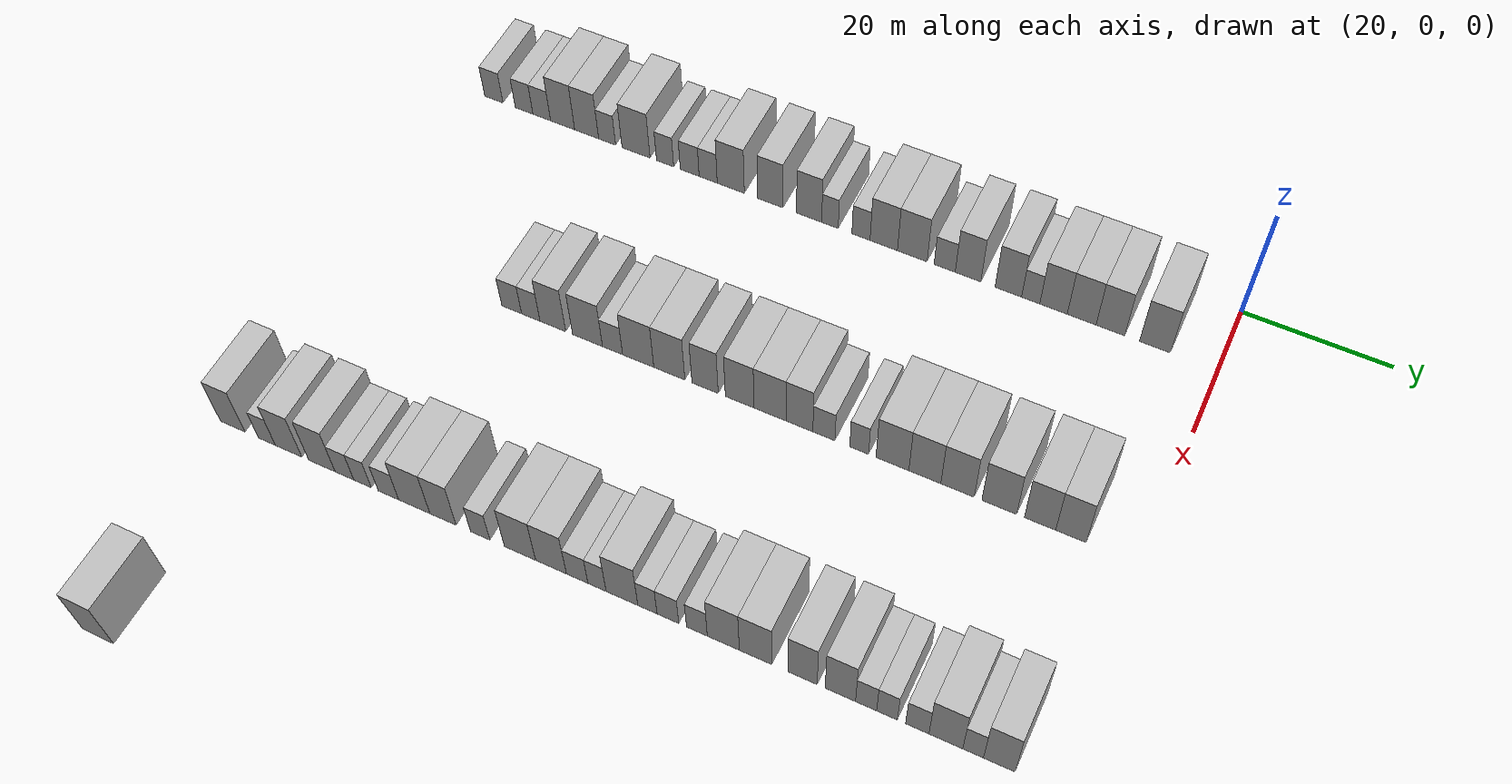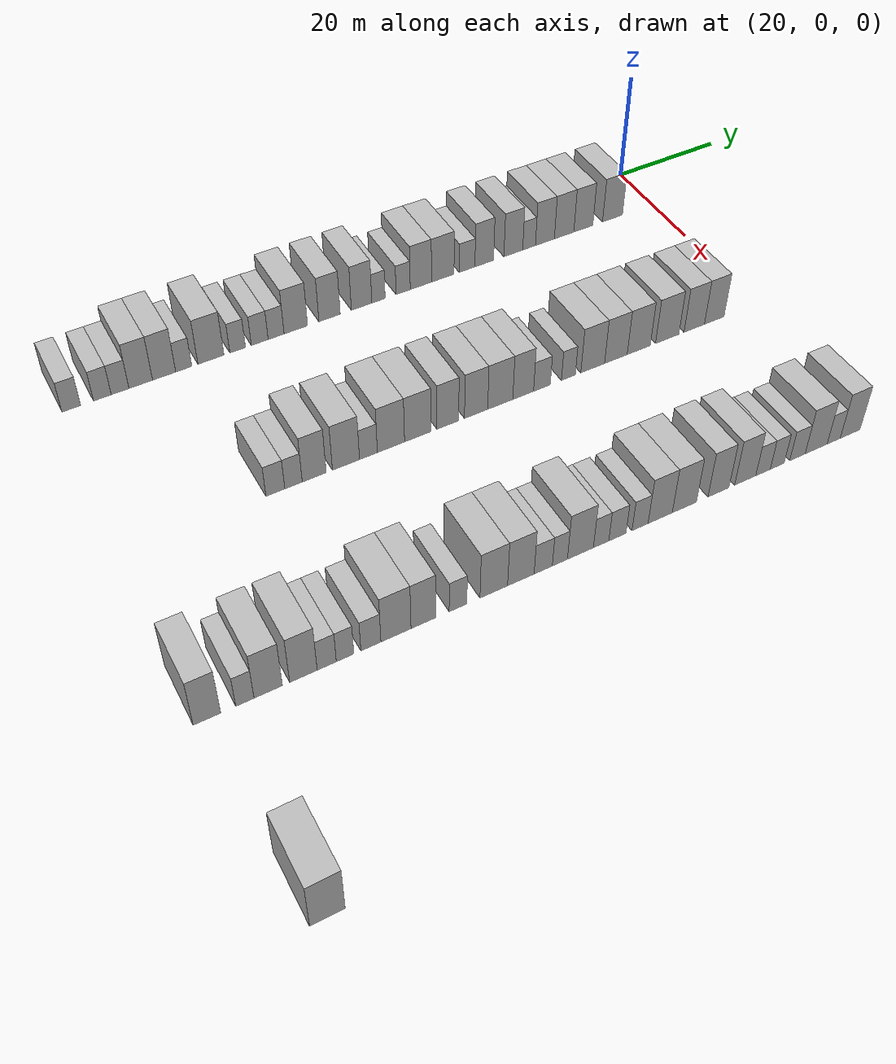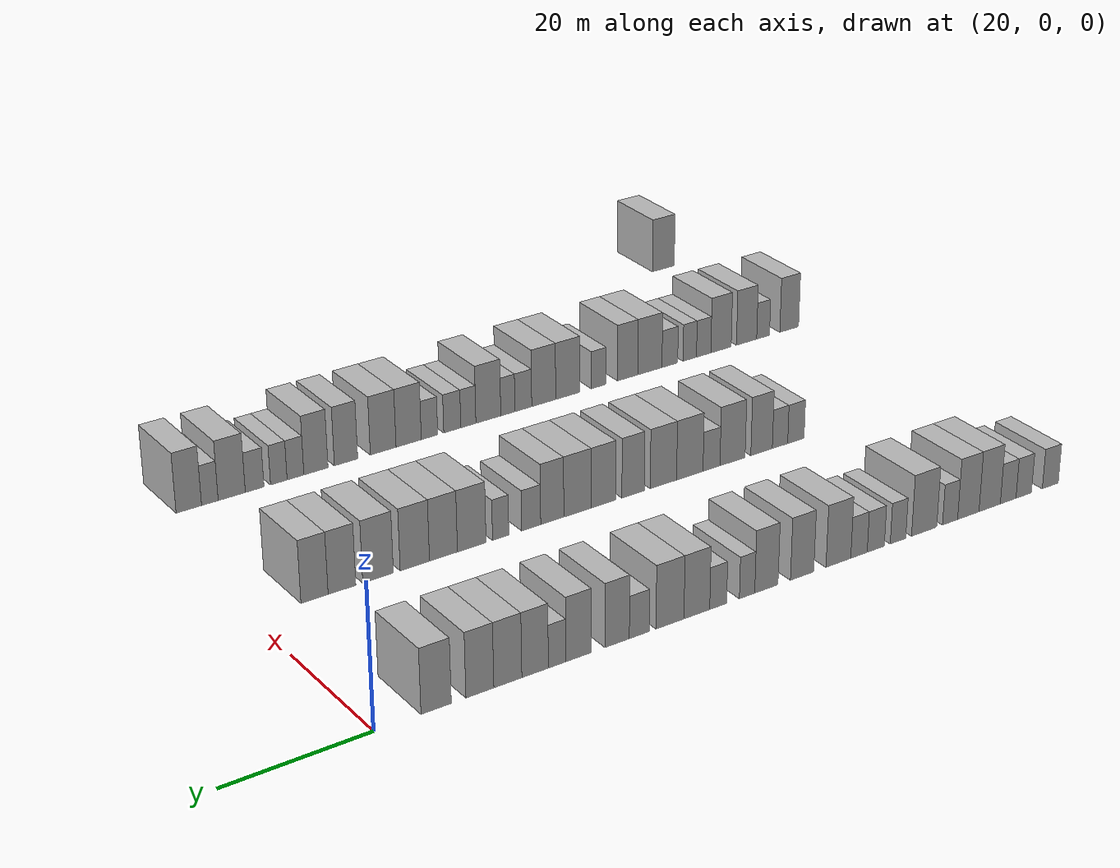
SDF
<sdf version="1.6">
 <world name="default">
  <model name="building_82">
   <static>1</static>
   <pose>25.0000 -105.5333 0 0.000000 0.000000 0.000000</pose>
   <link name="link">
    <pose>0 0 3.00 0 0 0</pose>
    <collision name="collision"><geometry><box><size>10.0000 2.9233 6.0000</size></box></geometry></collision>
    <visual name="visual">
     <cast_shadows>0</cast_shadows>
     <geometry><box><size>10.0000 2.9233 6.0000</size></box></geometry>
     <material>
      <script>
       <uri>model://HANNAS_wall/materials/scripts</uri>
       <uri>model://HANNAS_wall/materials/textures</uri>
       <name>vrc/HANNAS_wall</name>
      </script>
     </material>
    </visual>
   </link>
  </model>
  <model name="building_83">
   <static>1</static>
   <pose>25.0000 -100.6681 0 0.000000 0.000000 0.000000</pose>
   <link name="link">
    <pose>0 0 3.00 0 0 0</pose>
    <collision name="collision"><geometry><box><size>10.0000 2.8071 6.0000</size></box></geometry></collision>
    <visual name="visual">
     <cast_shadows>0</cast_shadows>
     <geometry><box><size>10.0000 2.8071 6.0000</size></box></geometry>
     <material>
      <script>
       <uri>model://HANNAS_wall/materials/scripts</uri>
       <uri>model://HANNAS_wall/materials/textures</uri>
       <name>vrc/HANNAS_wall</name>
      </script>
     </material>
    </visual>
   </link>
  </model>
  <model name="building_84">
   <static>1</static>
   <pose>25.0000 -97.8530 0 0.000000 0.000000 0.000000</pose>
   <link name="link">
    <pose>0 0 3.00 0 0 0</pose>
    <collision name="collision"><geometry><box><size>10.0000 2.8232 6.0000</size></box></geometry></collision>
    <visual name="visual">
     <cast_shadows>0</cast_shadows>
     <geometry><box><size>10.0000 2.8232 6.0000</size></box></geometry>
     <material>
      <script>
       <uri>model://HANNAS_wall/materials/scripts</uri>
       <uri>model://HANNAS_wall/materials/textures</uri>
       <name>vrc/HANNAS_wall</name>
      </script>
     </material>
    </visual>
   </link>
  </model>
  <model name="building_85">
   <static>1</static>
   <pose>25.0000 -94.5358 0 0.000000 0.000000 0.000000</pose>
   <link name="link">
    <pose>0 0 4.50 0 0 0</pose>
    <collision name="collision"><geometry><box><size>10.0000 3.8111 9.0000</size></box></geometry></collision>
    <visual name="visual">
     <cast_shadows>0</cast_shadows>
     <geometry><box><size>10.0000 3.8111 9.0000</size></box></geometry>
     <material>
      <script>
       <uri>model://HANNAS_wall/materials/scripts</uri>
       <uri>model://HANNAS_wall/materials/textures</uri>
       <name>vrc/HANNAS_wall</name>
      </script>
     </material>
    </visual>
   </link>
  </model>
  <model name="building_86">
   <static>1</static>
   <pose>25.0000 -90.7460 0 0.000000 0.000000 0.000000</pose>
   <link name="link">
    <pose>0 0 4.50 0 0 0</pose>
    <collision name="collision"><geometry><box><size>10.0000 3.7685 9.0000</size></box></geometry></collision>
    <visual name="visual">
     <cast_shadows>0</cast_shadows>
     <geometry><box><size>10.0000 3.7685 9.0000</size></box></geometry>
     <material>
      <script>
       <uri>model://HANNAS_wall/materials/scripts</uri>
       <uri>model://HANNAS_wall/materials/textures</uri>
       <name>vrc/HANNAS_wall</name>
      </script>
     </material>
    </visual>
   </link>
  </model>
  <model name="building_87">
   <static>1</static>
   <pose>25.0000 -87.5354 0 0.000000 0.000000 0.000000</pose>
   <link name="link">
    <pose>0 0 3.00 0 0 0</pose>
    <collision name="collision"><geometry><box><size>10.0000 2.6526 6.0000</size></box></geometry></collision>
    <visual name="visual">
     <cast_shadows>0</cast_shadows>
     <geometry><box><size>10.0000 2.6526 6.0000</size></box></geometry>
     <material>
      <script>
       <uri>model://HANNAS_wall/materials/scripts</uri>
       <uri>model://HANNAS_wall/materials/textures</uri>
       <name>vrc/HANNAS_wall</name>
      </script>
     </material>
    </visual>
   </link>
  </model>
  <model name="building_88">
   <static>1</static>
   <pose>25.0000 -83.0383 0 0.000000 0.000000 0.000000</pose>
   <link name="link">
    <pose>0 0 4.50 0 0 0</pose>
    <collision name="collision"><geometry><box><size>10.0000 4.3418 9.0000</size></box></geometry></collision>
    <visual name="visual">
     <cast_shadows>0</cast_shadows>
     <geometry><box><size>10.0000 4.3418 9.0000</size></box></geometry>
     <material>
      <script>
       <uri>model://HANNAS_wall/materials/scripts</uri>
       <uri>model://HANNAS_wall/materials/textures</uri>
       <name>vrc/HANNAS_wall</name>
      </script>
     </material>
    </visual>
   </link>
  </model>
  <model name="building_89">
   <static>1</static>
   <pose>25.0000 -78.5491 0 0.000000 0.000000 0.000000</pose>
   <link name="link">
    <pose>0 0 3.00 0 0 0</pose>
    <collision name="collision"><geometry><box><size>10.0000 2.6366 6.0000</size></box></geometry></collision>
    <visual name="visual">
     <cast_shadows>0</cast_shadows>
     <geometry><box><size>10.0000 2.6366 6.0000</size></box></geometry>
     <material>
      <script>
       <uri>model://HANNAS_wall/materials/scripts</uri>
       <uri>model://HANNAS_wall/materials/textures</uri>
       <name>vrc/HANNAS_wall</name>
      </script>
     </material>
    </visual>
   </link>
  </model>
  <model name="building_90">
   <static>1</static>
   <pose>25.0000 -74.7937 0 0.000000 0.000000 0.000000</pose>
   <link name="link">
    <pose>0 0 3.00 0 0 0</pose>
    <collision name="collision"><geometry><box><size>10.0000 2.8742 6.0000</size></box></geometry></collision>
    <visual name="visual">
     <cast_shadows>0</cast_shadows>
     <geometry><box><size>10.0000 2.8742 6.0000</size></box></geometry>
     <material>
      <script>
       <uri>model://HANNAS_wall/materials/scripts</uri>
       <uri>model://HANNAS_wall/materials/textures</uri>
       <name>vrc/HANNAS_wall</name>
      </script>
     </material>
    </visual>
   </link>
  </model>
  <model name="building_91">
   <static>1</static>
   <pose>25.0000 -71.9834 0 0.000000 0.000000 0.000000</pose>
   <link name="link">
    <pose>0 0 3.00 0 0 0</pose>
    <collision name="collision"><geometry><box><size>10.0000 2.7465 6.0000</size></box></geometry></collision>
    <visual name="visual">
     <cast_shadows>0</cast_shadows>
     <geometry><box><size>10.0000 2.7465 6.0000</size></box></geometry>
     <material>
      <script>
       <uri>model://HANNAS_wall/materials/scripts</uri>
       <uri>model://HANNAS_wall/materials/textures</uri>
       <name>vrc/HANNAS_wall</name>
      </script>
     </material>
    </visual>
   </link>
  </model>
  <model name="building_92">
   <static>1</static>
   <pose>25.0000 -68.5630 0 0.000000 0.000000 0.000000</pose>
   <link name="link">
    <pose>0 0 4.50 0 0 0</pose>
    <collision name="collision"><geometry><box><size>10.0000 4.0942 9.0000</size></box></geometry></collision>
    <visual name="visual">
     <cast_shadows>0</cast_shadows>
     <geometry><box><size>10.0000 4.0942 9.0000</size></box></geometry>
     <material>
      <script>
       <uri>model://HANNAS_wall/materials/scripts</uri>
       <uri>model://HANNAS_wall/materials/textures</uri>
       <name>vrc/HANNAS_wall</name>
      </script>
     </material>
    </visual>
   </link>
  </model>
  <model name="building_93">
   <static>1</static>
   <pose>25.0000 -62.6271 0 0.000000 0.000000 0.000000</pose>
   <link name="link">
    <pose>0 0 4.50 0 0 0</pose>
    <collision name="collision"><geometry><box><size>10.0000 3.7776 9.0000</size></box></geometry></collision>
    <visual name="visual">
     <cast_shadows>0</cast_shadows>
     <geometry><box><size>10.0000 3.7776 9.0000</size></box></geometry>
     <material>
      <script>
       <uri>model://HANNAS_wall/materials/scripts</uri>
       <uri>model://HANNAS_wall/materials/textures</uri>
       <name>vrc/HANNAS_wall</name>
      </script>
     </material>
    </visual>
   </link>
  </model>
  <model name="building_94">
   <static>1</static>
   <pose>25.0000 -56.8903 0 0.000000 0.000000 0.000000</pose>
   <link name="link">
    <pose>0 0 4.50 0 0 0</pose>
    <collision name="collision"><geometry><box><size>10.0000 3.6960 9.0000</size></box></geometry></collision>
    <visual name="visual">
     <cast_shadows>0</cast_shadows>
     <geometry><box><size>10.0000 3.6960 9.0000</size></box></geometry>
     <material>
      <script>
       <uri>model://HANNAS_wall/materials/scripts</uri>
       <uri>model://HANNAS_wall/materials/textures</uri>
       <name>vrc/HANNAS_wall</name>
      </script>
     </material>
    </visual>
   </link>
  </model>
  <model name="building_95">
   <static>1</static>
   <pose>25.0000 -53.8320 0 0.000000 0.000000 0.000000</pose>
   <link name="link">
    <pose>0 0 3.00 0 0 0</pose>
    <collision name="collision"><geometry><box><size>10.0000 2.4208 6.0000</size></box></geometry></collision>
    <visual name="visual">
     <cast_shadows>0</cast_shadows>
     <geometry><box><size>10.0000 2.4208 6.0000</size></box></geometry>
     <material>
      <script>
       <uri>model://HANNAS_wall/materials/scripts</uri>
       <uri>model://HANNAS_wall/materials/textures</uri>
       <name>vrc/HANNAS_wall</name>
      </script>
     </material>
    </visual>
   </link>
  </model>
  <model name="building_96">
   <static>1</static>
   <pose>25.0000 -49.3107 0 0.000000 0.000000 0.000000</pose>
   <link name="link">
    <pose>0 0 3.00 0 0 0</pose>
    <collision name="collision"><geometry><box><size>10.0000 2.6218 6.0000</size></box></geometry></collision>
    <visual name="visual">
     <cast_shadows>0</cast_shadows>
     <geometry><box><size>10.0000 2.6218 6.0000</size></box></geometry>
     <material>
      <script>
       <uri>model://HANNAS_wall/materials/scripts</uri>
       <uri>model://HANNAS_wall/materials/textures</uri>
       <name>vrc/HANNAS_wall</name>
      </script>
     </material>
    </visual>
   </link>
  </model>
  <model name="building_97">
   <static>1</static>
   <pose>25.0000 -46.0201 0 0.000000 0.000000 0.000000</pose>
   <link name="link">
    <pose>0 0 4.50 0 0 0</pose>
    <collision name="collision"><geometry><box><size>10.0000 3.9593 9.0000</size></box></geometry></collision>
    <visual name="visual">
     <cast_shadows>0</cast_shadows>
     <geometry><box><size>10.0000 3.9593 9.0000</size></box></geometry>
     <material>
      <script>
       <uri>model://HANNAS_wall/materials/scripts</uri>
       <uri>model://HANNAS_wall/materials/textures</uri>
       <name>vrc/HANNAS_wall</name>
      </script>
     </material>
    </visual>
   </link>
  </model>
  <model name="building_98">
   <static>1</static>
   <pose>25.0000 -41.9199 0 0.000000 0.000000 0.000000</pose>
   <link name="link">
    <pose>0 0 4.50 0 0 0</pose>
    <collision name="collision"><geometry><box><size>10.0000 4.2411 9.0000</size></box></geometry></collision>
    <visual name="visual">
     <cast_shadows>0</cast_shadows>
     <geometry><box><size>10.0000 4.2411 9.0000</size></box></geometry>
     <material>
      <script>
       <uri>model://HANNAS_wall/materials/scripts</uri>
       <uri>model://HANNAS_wall/materials/textures</uri>
       <name>vrc/HANNAS_wall</name>
      </script>
     </material>
    </visual>
   </link>
  </model>
  <model name="building_99">
   <static>1</static>
   <pose>25.0000 -37.3042 0 0.000000 0.000000 0.000000</pose>
   <link name="link">
    <pose>0 0 3.00 0 0 0</pose>
    <collision name="collision"><geometry><box><size>10.0000 2.9902 6.0000</size></box></geometry></collision>
    <visual name="visual">
     <cast_shadows>0</cast_shadows>
     <geometry><box><size>10.0000 2.9902 6.0000</size></box></geometry>
     <material>
      <script>
       <uri>model://HANNAS_wall/materials/scripts</uri>
       <uri>model://HANNAS_wall/materials/textures</uri>
       <name>vrc/HANNAS_wall</name>
      </script>
     </material>
    </visual>
   </link>
  </model>
  <model name="building_100">
   <static>1</static>
   <pose>25.0000 -34.0062 0 0.000000 0.000000 0.000000</pose>
   <link name="link">
    <pose>0 0 4.50 0 0 0</pose>
    <collision name="collision"><geometry><box><size>10.0000 3.6058 9.0000</size></box></geometry></collision>
    <visual name="visual">
     <cast_shadows>0</cast_shadows>
     <geometry><box><size>10.0000 3.6058 9.0000</size></box></geometry>
     <material>
      <script>
       <uri>model://HANNAS_wall/materials/scripts</uri>
       <uri>model://HANNAS_wall/materials/textures</uri>
       <name>vrc/HANNAS_wall</name>
      </script>
     </material>
    </visual>
   </link>
  </model>
  <model name="building_101">
   <static>1</static>
   <pose>25.0000 -28.3588 0 0.000000 0.000000 0.000000</pose>
   <link name="link">
    <pose>0 0 4.50 0 0 0</pose>
    <collision name="collision"><geometry><box><size>10.0000 3.6889 9.0000</size></box></geometry></collision>
    <visual name="visual">
     <cast_shadows>0</cast_shadows>
     <geometry><box><size>10.0000 3.6889 9.0000</size></box></geometry>
     <material>
      <script>
       <uri>model://HANNAS_wall/materials/scripts</uri>
       <uri>model://HANNAS_wall/materials/textures</uri>
       <name>vrc/HANNAS_wall</name>
      </script>
     </material>
    </visual>
   </link>
  </model>
  <model name="building_102">
   <static>1</static>
   <pose>25.0000 -25.2574 0 0.000000 0.000000 0.000000</pose>
   <link name="link">
    <pose>0 0 3.00 0 0 0</pose>
    <collision name="collision"><geometry><box><size>10.0000 2.5140 6.0000</size></box></geometry></collision>
    <visual name="visual">
     <cast_shadows>0</cast_shadows>
     <geometry><box><size>10.0000 2.5140 6.0000</size></box></geometry>
     <material>
      <script>
       <uri>model://HANNAS_wall/materials/scripts</uri>
       <uri>model://HANNAS_wall/materials/textures</uri>
       <name>vrc/HANNAS_wall</name>
      </script>
     </material>
    </visual>
   </link>
  </model>
  <model name="building_103">
   <static>1</static>
   <pose>25.0000 -22.1129 0 0.000000 0.000000 0.000000</pose>
   <link name="link">
    <pose>0 0 4.50 0 0 0</pose>
    <collision name="collision"><geometry><box><size>10.0000 3.7750 9.0000</size></box></geometry></collision>
    <visual name="visual">
     <cast_shadows>0</cast_shadows>
     <geometry><box><size>10.0000 3.7750 9.0000</size></box></geometry>
     <material>
      <script>
       <uri>model://HANNAS_wall/materials/scripts</uri>
       <uri>model://HANNAS_wall/materials/textures</uri>
       <name>vrc/HANNAS_wall</name>
      </script>
     </material>
    </visual>
   </link>
  </model>
  <model name="building_104">
   <static>1</static>
   <pose>25.0000 -18.2613 0 0.000000 0.000000 0.000000</pose>
   <link name="link">
    <pose>0 0 4.50 0 0 0</pose>
    <collision name="collision"><geometry><box><size>10.0000 3.9282 9.0000</size></box></geometry></collision>
    <visual name="visual">
     <cast_shadows>0</cast_shadows>
     <geometry><box><size>10.0000 3.9282 9.0000</size></box></geometry>
     <material>
      <script>
       <uri>model://HANNAS_wall/materials/scripts</uri>
       <uri>model://HANNAS_wall/materials/textures</uri>
       <name>vrc/HANNAS_wall</name>
      </script>
     </material>
    </visual>
   </link>
  </model>
  <model name="building_105">
   <static>1</static>
   <pose>25.0000 -14.3608 0 0.000000 0.000000 0.000000</pose>
   <link name="link">
    <pose>0 0 4.50 0 0 0</pose>
    <collision name="collision"><geometry><box><size>10.0000 3.8728 9.0000</size></box></geometry></collision>
    <visual name="visual">
     <cast_shadows>0</cast_shadows>
     <geometry><box><size>10.0000 3.8728 9.0000</size></box></geometry>
     <material>
      <script>
       <uri>model://HANNAS_wall/materials/scripts</uri>
       <uri>model://HANNAS_wall/materials/textures</uri>
       <name>vrc/HANNAS_wall</name>
      </script>
     </material>
    </visual>
   </link>
  </model>
  <model name="building_106">
   <static>1</static>
   <pose>25.0000 -8.3646 0 0.000000 0.000000 0.000000</pose>
   <link name="link">
    <pose>0 0 4.50 0 0 0</pose>
    <collision name="collision"><geometry><box><size>10.0000 4.1196 9.0000</size></box></geometry></collision>
    <visual name="visual">
     <cast_shadows>0</cast_shadows>
     <geometry><box><size>10.0000 4.1196 9.0000</size></box></geometry>
     <material>
      <script>
       <uri>model://HANNAS_wall/materials/scripts</uri>
       <uri>model://HANNAS_wall/materials/textures</uri>
       <name>vrc/HANNAS_wall</name>
      </script>
     </material>
    </visual>
   </link>
  </model>
  <model name="building_297">
   <static>1</static>
   <pose>55.0000 -85.2754 0 0.000000 0.000000 0.000000</pose>
   <link name="link">
    <pose>0 0 3.00 0 0 0</pose>
    <collision name="collision"><geometry><box><size>10.0000 2.9210 6.0000</size></box></geometry></collision>
    <visual name="visual">
     <cast_shadows>0</cast_shadows>
     <geometry><box><size>10.0000 2.9210 6.0000</size></box></geometry>
     <material>
      <script>
       <uri>model://HANNAS_wall/materials/scripts</uri>
       <uri>model://HANNAS_wall/materials/textures</uri>
       <name>vrc/HANNAS_wall</name>
      </script>
     </material>
    </visual>
   </link>
  </model>
  <model name="building_298">
   <static>1</static>
   <pose>55.0000 -82.4532 0 0.000000 0.000000 0.000000</pose>
   <link name="link">
    <pose>0 0 3.00 0 0 0</pose>
    <collision name="collision"><geometry><box><size>10.0000 2.7234 6.0000</size></box></geometry></collision>
    <visual name="visual">
     <cast_shadows>0</cast_shadows>
     <geometry><box><size>10.0000 2.7234 6.0000</size></box></geometry>
     <material>
      <script>
       <uri>model://HANNAS_wall/materials/scripts</uri>
       <uri>model://HANNAS_wall/materials/textures</uri>
       <name>vrc/HANNAS_wall</name>
      </script>
     </material>
    </visual>
   </link>
  </model>
  <model name="building_299">
   <static>1</static>
   <pose>55.0000 -79.2053 0 0.000000 0.000000 0.000000</pose>
   <link name="link">
    <pose>0 0 4.50 0 0 0</pose>
    <collision name="collision"><geometry><box><size>10.0000 3.7723 9.0000</size></box></geometry></collision>
    <visual name="visual">
     <cast_shadows>0</cast_shadows>
     <geometry><box><size>10.0000 3.7723 9.0000</size></box></geometry>
     <material>
      <script>
       <uri>model://HANNAS_wall/materials/scripts</uri>
       <uri>model://HANNAS_wall/materials/textures</uri>
       <name>vrc/HANNAS_wall</name>
      </script>
     </material>
    </visual>
   </link>
  </model>
  <model name="building_300">
   <static>1</static>
   <pose>55.0000 -74.1495 0 0.000000 0.000000 0.000000</pose>
   <link name="link">
    <pose>0 0 4.50 0 0 0</pose>
    <collision name="collision"><geometry><box><size>10.0000 4.3392 9.0000</size></box></geometry></collision>
    <visual name="visual">
     <cast_shadows>0</cast_shadows>
     <geometry><box><size>10.0000 4.3392 9.0000</size></box></geometry>
     <material>
      <script>
       <uri>model://HANNAS_wall/materials/scripts</uri>
       <uri>model://HANNAS_wall/materials/textures</uri>
       <name>vrc/HANNAS_wall</name>
      </script>
     </material>
    </visual>
   </link>
  </model>
  <model name="building_301">
   <static>1</static>
   <pose>55.0000 -70.5280 0 0.000000 0.000000 0.000000</pose>
   <link name="link">
    <pose>0 0 3.00 0 0 0</pose>
    <collision name="collision"><geometry><box><size>10.0000 2.9038 6.0000</size></box></geometry></collision>
    <visual name="visual">
     <cast_shadows>0</cast_shadows>
     <geometry><box><size>10.0000 2.9038 6.0000</size></box></geometry>
     <material>
      <script>
       <uri>model://HANNAS_wall/materials/scripts</uri>
       <uri>model://HANNAS_wall/materials/textures</uri>
       <name>vrc/HANNAS_wall</name>
      </script>
     </material>
    </visual>
   </link>
  </model>
  <model name="building_302">
   <static>1</static>
   <pose>55.0000 -66.8390 0 0.000000 0.000000 0.000000</pose>
   <link name="link">
    <pose>0 0 4.50 0 0 0</pose>
    <collision name="collision"><geometry><box><size>10.0000 4.4742 9.0000</size></box></geometry></collision>
    <visual name="visual">
     <cast_shadows>0</cast_shadows>
     <geometry><box><size>10.0000 4.4742 9.0000</size></box></geometry>
     <material>
      <script>
       <uri>model://HANNAS_wall/materials/scripts</uri>
       <uri>model://HANNAS_wall/materials/textures</uri>
       <name>vrc/HANNAS_wall</name>
      </script>
     </material>
    </visual>
   </link>
  </model>
  <model name="building_303">
   <static>1</static>
   <pose>55.0000 -62.4033 0 0.000000 0.000000 0.000000</pose>
   <link name="link">
    <pose>0 0 4.50 0 0 0</pose>
    <collision name="collision"><geometry><box><size>10.0000 4.3973 9.0000</size></box></geometry></collision>
    <visual name="visual">
     <cast_shadows>0</cast_shadows>
     <geometry><box><size>10.0000 4.3973 9.0000</size></box></geometry>
     <material>
      <script>
       <uri>model://HANNAS_wall/materials/scripts</uri>
       <uri>model://HANNAS_wall/materials/textures</uri>
       <name>vrc/HANNAS_wall</name>
      </script>
     </material>
    </visual>
   </link>
  </model>
  <model name="building_304">
   <static>1</static>
   <pose>55.0000 -57.3622 0 0.000000 0.000000 0.000000</pose>
   <link name="link">
    <pose>0 0 4.50 0 0 0</pose>
    <collision name="collision"><geometry><box><size>10.0000 3.6848 9.0000</size></box></geometry></collision>
    <visual name="visual">
     <cast_shadows>0</cast_shadows>
     <geometry><box><size>10.0000 3.6848 9.0000</size></box></geometry>
     <material>
      <script>
       <uri>model://HANNAS_wall/materials/scripts</uri>
       <uri>model://HANNAS_wall/materials/textures</uri>
       <name>vrc/HANNAS_wall</name>
      </script>
     </material>
    </visual>
   </link>
  </model>
  <model name="building_305">
   <static>1</static>
   <pose>55.0000 -52.5245 0 0.000000 0.000000 0.000000</pose>
   <link name="link">
    <pose>0 0 4.50 0 0 0</pose>
    <collision name="collision"><geometry><box><size>10.0000 3.9905 9.0000</size></box></geometry></collision>
    <visual name="visual">
     <cast_shadows>0</cast_shadows>
     <geometry><box><size>10.0000 3.9905 9.0000</size></box></geometry>
     <material>
      <script>
       <uri>model://HANNAS_wall/materials/scripts</uri>
       <uri>model://HANNAS_wall/materials/textures</uri>
       <name>vrc/HANNAS_wall</name>
      </script>
     </material>
    </visual>
   </link>
  </model>
  <model name="building_306">
   <static>1</static>
   <pose>55.0000 -48.3362 0 0.000000 0.000000 0.000000</pose>
   <link name="link">
    <pose>0 0 4.50 0 0 0</pose>
    <collision name="collision"><geometry><box><size>10.0000 4.3862 9.0000</size></box></geometry></collision>
    <visual name="visual">
     <cast_shadows>0</cast_shadows>
     <geometry><box><size>10.0000 4.3862 9.0000</size></box></geometry>
     <material>
      <script>
       <uri>model://HANNAS_wall/materials/scripts</uri>
       <uri>model://HANNAS_wall/materials/textures</uri>
       <name>vrc/HANNAS_wall</name>
      </script>
     </material>
    </visual>
   </link>
  </model>
  <model name="building_307">
   <static>1</static>
   <pose>55.0000 -44.3082 0 0.000000 0.000000 0.000000</pose>
   <link name="link">
    <pose>0 0 4.50 0 0 0</pose>
    <collision name="collision"><geometry><box><size>10.0000 3.6697 9.0000</size></box></geometry></collision>
    <visual name="visual">
     <cast_shadows>0</cast_shadows>
     <geometry><box><size>10.0000 3.6697 9.0000</size></box></geometry>
     <material>
      <script>
       <uri>model://HANNAS_wall/materials/scripts</uri>
       <uri>model://HANNAS_wall/materials/textures</uri>
       <name>vrc/HANNAS_wall</name>
      </script>
     </material>
    </visual>
   </link>
  </model>
  <model name="building_308">
   <static>1</static>
   <pose>55.0000 -40.9795 0 0.000000 0.000000 0.000000</pose>
   <link name="link">
    <pose>0 0 3.00 0 0 0</pose>
    <collision name="collision"><geometry><box><size>10.0000 2.9876 6.0000</size></box></geometry></collision>
    <visual name="visual">
     <cast_shadows>0</cast_shadows>
     <geometry><box><size>10.0000 2.9876 6.0000</size></box></geometry>
     <material>
      <script>
       <uri>model://HANNAS_wall/materials/scripts</uri>
       <uri>model://HANNAS_wall/materials/textures</uri>
       <name>vrc/HANNAS_wall</name>
      </script>
     </material>
    </visual>
   </link>
  </model>
  <model name="building_309">
   <static>1</static>
   <pose>55.0000 -36.2244 0 0.000000 0.000000 0.000000</pose>
   <link name="link">
    <pose>0 0 3.00 0 0 0</pose>
    <collision name="collision"><geometry><box><size>10.0000 2.5228 6.0000</size></box></geometry></collision>
    <visual name="visual">
     <cast_shadows>0</cast_shadows>
     <geometry><box><size>10.0000 2.5228 6.0000</size></box></geometry>
     <material>
      <script>
       <uri>model://HANNAS_wall/materials/scripts</uri>
       <uri>model://HANNAS_wall/materials/textures</uri>
       <name>vrc/HANNAS_wall</name>
      </script>
     </material>
    </visual>
   </link>
  </model>
  <model name="building_310">
   <static>1</static>
   <pose>55.0000 -31.7839 0 0.000000 0.000000 0.000000</pose>
   <link name="link">
    <pose>0 0 4.50 0 0 0</pose>
    <collision name="collision"><geometry><box><size>10.0000 4.3581 9.0000</size></box></geometry></collision>
    <visual name="visual">
     <cast_shadows>0</cast_shadows>
     <geometry><box><size>10.0000 4.3581 9.0000</size></box></geometry>
     <material>
      <script>
       <uri>model://HANNAS_wall/materials/scripts</uri>
       <uri>model://HANNAS_wall/materials/textures</uri>
       <name>vrc/HANNAS_wall</name>
      </script>
     </material>
    </visual>
   </link>
  </model>
  <model name="building_311">
   <static>1</static>
   <pose>55.0000 -27.4965 0 0.000000 0.000000 0.000000</pose>
   <link name="link">
    <pose>0 0 4.50 0 0 0</pose>
    <collision name="collision"><geometry><box><size>10.0000 4.2167 9.0000</size></box></geometry></collision>
    <visual name="visual">
     <cast_shadows>0</cast_shadows>
     <geometry><box><size>10.0000 4.2167 9.0000</size></box></geometry>
     <material>
      <script>
       <uri>model://HANNAS_wall/materials/scripts</uri>
       <uri>model://HANNAS_wall/materials/textures</uri>
       <name>vrc/HANNAS_wall</name>
      </script>
     </material>
    </visual>
   </link>
  </model>
  <model name="building_312">
   <static>1</static>
   <pose>55.0000 -23.2099 0 0.000000 0.000000 0.000000</pose>
   <link name="link">
    <pose>0 0 4.50 0 0 0</pose>
    <collision name="collision"><geometry><box><size>10.0000 4.3565 9.0000</size></box></geometry></collision>
    <visual name="visual">
     <cast_shadows>0</cast_shadows>
     <geometry><box><size>10.0000 4.3565 9.0000</size></box></geometry>
     <material>
      <script>
       <uri>model://HANNAS_wall/materials/scripts</uri>
       <uri>model://HANNAS_wall/materials/textures</uri>
       <name>vrc/HANNAS_wall</name>
      </script>
     </material>
    </visual>
   </link>
  </model>
  <model name="building_313">
   <static>1</static>
   <pose>55.0000 -17.7929 0 0.000000 0.000000 0.000000</pose>
   <link name="link">
    <pose>0 0 4.50 0 0 0</pose>
    <collision name="collision"><geometry><box><size>10.0000 4.4776 9.0000</size></box></geometry></collision>
    <visual name="visual">
     <cast_shadows>0</cast_shadows>
     <geometry><box><size>10.0000 4.4776 9.0000</size></box></geometry>
     <material>
      <script>
       <uri>model://HANNAS_wall/materials/scripts</uri>
       <uri>model://HANNAS_wall/materials/textures</uri>
       <name>vrc/HANNAS_wall</name>
      </script>
     </material>
    </visual>
   </link>
  </model>
  <model name="building_314">
   <static>1</static>
   <pose>55.0000 -12.5634 0 0.000000 0.000000 0.000000</pose>
   <link name="link">
    <pose>0 0 4.50 0 0 0</pose>
    <collision name="collision"><geometry><box><size>10.0000 3.9813 9.0000</size></box></geometry></collision>
    <visual name="visual">
     <cast_shadows>0</cast_shadows>
     <geometry><box><size>10.0000 3.9813 9.0000</size></box></geometry>
     <material>
      <script>
       <uri>model://HANNAS_wall/materials/scripts</uri>
       <uri>model://HANNAS_wall/materials/textures</uri>
       <name>vrc/HANNAS_wall</name>
      </script>
     </material>
    </visual>
   </link>
  </model>
  <model name="building_315">
   <static>1</static>
   <pose>55.0000 -8.6425 0 0.000000 0.000000 0.000000</pose>
   <link name="link">
    <pose>0 0 4.50 0 0 0</pose>
    <collision name="collision"><geometry><box><size>10.0000 3.8606 9.0000</size></box></geometry></collision>
    <visual name="visual">
     <cast_shadows>0</cast_shadows>
     <geometry><box><size>10.0000 3.8606 9.0000</size></box></geometry>
     <material>
      <script>
       <uri>model://HANNAS_wall/materials/scripts</uri>
       <uri>model://HANNAS_wall/materials/textures</uri>
       <name>vrc/HANNAS_wall</name>
      </script>
     </material>
    </visual>
   </link>
  </model>
  <model name="building_516">
   <static>1</static>
   <pose>85.0000 -107.6336 0 0.000000 0.000000 0.000000</pose>
   <link name="link">
    <pose>0 0 4.50 0 0 0</pose>
    <collision name="collision"><geometry><box><size>10.0000 3.6516 9.0000</size></box></geometry></collision>
    <visual name="visual">
     <cast_shadows>0</cast_shadows>
     <geometry><box><size>10.0000 3.6516 9.0000</size></box></geometry>
     <material>
      <script>
       <uri>model://HANNAS_wall/materials/scripts</uri>
       <uri>model://HANNAS_wall/materials/textures</uri>
       <name>vrc/HANNAS_wall</name>
      </script>
     </material>
    </visual>
   </link>
  </model>
  <model name="building_517">
   <static>1</static>
   <pose>85.0000 -102.5727 0 0.000000 0.000000 0.000000</pose>
   <link name="link">
    <pose>0 0 3.00 0 0 0</pose>
    <collision name="collision"><geometry><box><size>10.0000 2.4701 6.0000</size></box></geometry></collision>
    <visual name="visual">
     <cast_shadows>0</cast_shadows>
     <geometry><box><size>10.0000 2.4701 6.0000</size></box></geometry>
     <material>
      <script>
       <uri>model://HANNAS_wall/materials/scripts</uri>
       <uri>model://HANNAS_wall/materials/textures</uri>
       <name>vrc/HANNAS_wall</name>
      </script>
     </material>
    </visual>
   </link>
  </model>
  <model name="building_518">
   <static>1</static>
   <pose>85.0000 -99.4072 0 0.000000 0.000000 0.000000</pose>
   <link name="link">
    <pose>0 0 4.50 0 0 0</pose>
    <collision name="collision"><geometry><box><size>10.0000 3.8610 9.0000</size></box></geometry></collision>
    <visual name="visual">
     <cast_shadows>0</cast_shadows>
     <geometry><box><size>10.0000 3.8610 9.0000</size></box></geometry>
     <material>
      <script>
       <uri>model://HANNAS_wall/materials/scripts</uri>
       <uri>model://HANNAS_wall/materials/textures</uri>
       <name>vrc/HANNAS_wall</name>
      </script>
     </material>
    </visual>
   </link>
  </model>
  <model name="building_519">
   <static>1</static>
   <pose>85.0000 -94.5643 0 0.000000 0.000000 0.000000</pose>
   <link name="link">
    <pose>0 0 4.50 0 0 0</pose>
    <collision name="collision"><geometry><box><size>10.0000 3.8247 9.0000</size></box></geometry></collision>
    <visual name="visual">
     <cast_shadows>0</cast_shadows>
     <geometry><box><size>10.0000 3.8247 9.0000</size></box></geometry>
     <material>
      <script>
       <uri>model://HANNAS_wall/materials/scripts</uri>
       <uri>model://HANNAS_wall/materials/textures</uri>
       <name>vrc/HANNAS_wall</name>
      </script>
     </material>
    </visual>
   </link>
  </model>
  <model name="building_520">
   <static>1</static>
   <pose>85.0000 -91.3111 0 0.000000 0.000000 0.000000</pose>
   <link name="link">
    <pose>0 0 3.00 0 0 0</pose>
    <collision name="collision"><geometry><box><size>10.0000 2.6817 6.0000</size></box></geometry></collision>
    <visual name="visual">
     <cast_shadows>0</cast_shadows>
     <geometry><box><size>10.0000 2.6817 6.0000</size></box></geometry>
     <material>
      <script>
       <uri>model://HANNAS_wall/materials/scripts</uri>
       <uri>model://HANNAS_wall/materials/textures</uri>
       <name>vrc/HANNAS_wall</name>
      </script>
     </material>
    </visual>
   </link>
  </model>
  <model name="building_521">
   <static>1</static>
   <pose>85.0000 -88.7271 0 0.000000 0.000000 0.000000</pose>
   <link name="link">
    <pose>0 0 3.00 0 0 0</pose>
    <collision name="collision"><geometry><box><size>10.0000 2.4863 6.0000</size></box></geometry></collision>
    <visual name="visual">
     <cast_shadows>0</cast_shadows>
     <geometry><box><size>10.0000 2.4863 6.0000</size></box></geometry>
     <material>
      <script>
       <uri>model://HANNAS_wall/materials/scripts</uri>
       <uri>model://HANNAS_wall/materials/textures</uri>
       <name>vrc/HANNAS_wall</name>
      </script>
     </material>
    </visual>
   </link>
  </model>
  <model name="building_522">
   <static>1</static>
   <pose>85.0000 -85.0419 0 0.000000 0.000000 0.000000</pose>
   <link name="link">
    <pose>0 0 3.00 0 0 0</pose>
    <collision name="collision"><geometry><box><size>10.0000 2.8840 6.0000</size></box></geometry></collision>
    <visual name="visual">
     <cast_shadows>0</cast_shadows>
     <geometry><box><size>10.0000 2.8840 6.0000</size></box></geometry>
     <material>
      <script>
       <uri>model://HANNAS_wall/materials/scripts</uri>
       <uri>model://HANNAS_wall/materials/textures</uri>
       <name>vrc/HANNAS_wall</name>
      </script>
     </material>
    </visual>
   </link>
  </model>
  <model name="building_523">
   <static>1</static>
   <pose>85.0000 -81.4042 0 0.000000 0.000000 0.000000</pose>
   <link name="link">
    <pose>0 0 4.50 0 0 0</pose>
    <collision name="collision"><geometry><box><size>10.0000 4.3914 9.0000</size></box></geometry></collision>
    <visual name="visual">
     <cast_shadows>0</cast_shadows>
     <geometry><box><size>10.0000 4.3914 9.0000</size></box></geometry>
     <material>
      <script>
       <uri>model://HANNAS_wall/materials/scripts</uri>
       <uri>model://HANNAS_wall/materials/textures</uri>
       <name>vrc/HANNAS_wall</name>
      </script>
     </material>
    </visual>
   </link>
  </model>
  <model name="building_524">
   <static>1</static>
   <pose>85.0000 -77.3762 0 0.000000 0.000000 0.000000</pose>
   <link name="link">
    <pose>0 0 4.50 0 0 0</pose>
    <collision name="collision"><geometry><box><size>10.0000 3.6644 9.0000</size></box></geometry></collision>
    <visual name="visual">
     <cast_shadows>0</cast_shadows>
     <geometry><box><size>10.0000 3.6644 9.0000</size></box></geometry>
     <material>
      <script>
       <uri>model://HANNAS_wall/materials/scripts</uri>
       <uri>model://HANNAS_wall/materials/textures</uri>
       <name>vrc/HANNAS_wall</name>
      </script>
     </material>
    </visual>
   </link>
  </model>
  <model name="building_525">
   <static>1</static>
   <pose>85.0000 -72.2135 0 0.000000 0.000000 0.000000</pose>
   <link name="link">
    <pose>0 0 3.00 0 0 0</pose>
    <collision name="collision"><geometry><box><size>10.0000 2.6611 6.0000</size></box></geometry></collision>
    <visual name="visual">
     <cast_shadows>0</cast_shadows>
     <geometry><box><size>10.0000 2.6611 6.0000</size></box></geometry>
     <material>
      <script>
       <uri>model://HANNAS_wall/materials/scripts</uri>
       <uri>model://HANNAS_wall/materials/textures</uri>
       <name>vrc/HANNAS_wall</name>
      </script>
     </material>
    </visual>
   </link>
  </model>
  <model name="building_526">
   <static>1</static>
   <pose>85.0000 -66.7624 0 0.000000 0.000000 0.000000</pose>
   <link name="link">
    <pose>0 0 4.50 0 0 0</pose>
    <collision name="collision"><geometry><box><size>10.0000 4.2412 9.0000</size></box></geometry></collision>
    <visual name="visual">
     <cast_shadows>0</cast_shadows>
     <geometry><box><size>10.0000 4.2412 9.0000</size></box></geometry>
     <material>
      <script>
       <uri>model://HANNAS_wall/materials/scripts</uri>
       <uri>model://HANNAS_wall/materials/textures</uri>
       <name>vrc/HANNAS_wall</name>
      </script>
     </material>
    </visual>
   </link>
  </model>
  <model name="building_527">
   <static>1</static>
   <pose>85.0000 -62.5671 0 0.000000 0.000000 0.000000</pose>
   <link name="link">
    <pose>0 0 4.50 0 0 0</pose>
    <collision name="collision"><geometry><box><size>10.0000 4.1493 9.0000</size></box></geometry></collision>
    <visual name="visual">
     <cast_shadows>0</cast_shadows>
     <geometry><box><size>10.0000 4.1493 9.0000</size></box></geometry>
     <material>
      <script>
       <uri>model://HANNAS_wall/materials/scripts</uri>
       <uri>model://HANNAS_wall/materials/textures</uri>
       <name>vrc/HANNAS_wall</name>
      </script>
     </material>
    </visual>
   </link>
  </model>
  <model name="building_528">
   <static>1</static>
   <pose>85.0000 -59.0534 0 0.000000 0.000000 0.000000</pose>
   <link name="link">
    <pose>0 0 3.00 0 0 0</pose>
    <collision name="collision"><geometry><box><size>10.0000 2.8781 6.0000</size></box></geometry></collision>
    <visual name="visual">
     <cast_shadows>0</cast_shadows>
     <geometry><box><size>10.0000 2.8781 6.0000</size></box></geometry>
     <material>
      <script>
       <uri>model://HANNAS_wall/materials/scripts</uri>
       <uri>model://HANNAS_wall/materials/textures</uri>
       <name>vrc/HANNAS_wall</name>
      </script>
     </material>
    </visual>
   </link>
  </model>
  <model name="building_529">
   <static>1</static>
   <pose>85.0000 -56.4107 0 0.000000 0.000000 0.000000</pose>
   <link name="link">
    <pose>0 0 3.00 0 0 0</pose>
    <collision name="collision"><geometry><box><size>10.0000 2.4072 6.0000</size></box></geometry></collision>
    <visual name="visual">
     <cast_shadows>0</cast_shadows>
     <geometry><box><size>10.0000 2.4072 6.0000</size></box></geometry>
     <material>
      <script>
       <uri>model://HANNAS_wall/materials/scripts</uri>
       <uri>model://HANNAS_wall/materials/textures</uri>
       <name>vrc/HANNAS_wall</name>
      </script>
     </material>
    </visual>
   </link>
  </model>
  <model name="building_530">
   <static>1</static>
   <pose>85.0000 -53.1112 0 0.000000 0.000000 0.000000</pose>
   <link name="link">
    <pose>0 0 4.50 0 0 0</pose>
    <collision name="collision"><geometry><box><size>10.0000 4.1919 9.0000</size></box></geometry></collision>
    <visual name="visual">
     <cast_shadows>0</cast_shadows>
     <geometry><box><size>10.0000 4.1919 9.0000</size></box></geometry>
     <material>
      <script>
       <uri>model://HANNAS_wall/materials/scripts</uri>
       <uri>model://HANNAS_wall/materials/textures</uri>
       <name>vrc/HANNAS_wall</name>
      </script>
     </material>
    </visual>
   </link>
  </model>
  <model name="building_531">
   <static>1</static>
   <pose>85.0000 -49.7569 0 0.000000 0.000000 0.000000</pose>
   <link name="link">
    <pose>0 0 3.00 0 0 0</pose>
    <collision name="collision"><geometry><box><size>10.0000 2.5169 6.0000</size></box></geometry></collision>
    <visual name="visual">
     <cast_shadows>0</cast_shadows>
     <geometry><box><size>10.0000 2.5169 6.0000</size></box></geometry>
     <material>
      <script>
       <uri>model://HANNAS_wall/materials/scripts</uri>
       <uri>model://HANNAS_wall/materials/textures</uri>
       <name>vrc/HANNAS_wall</name>
      </script>
     </material>
    </visual>
   </link>
  </model>
  <model name="building_532">
   <static>1</static>
   <pose>85.0000 -47.0857 0 0.000000 0.000000 0.000000</pose>
   <link name="link">
    <pose>0 0 3.00 0 0 0</pose>
    <collision name="collision"><geometry><box><size>10.0000 2.8255 6.0000</size></box></geometry></collision>
    <visual name="visual">
     <cast_shadows>0</cast_shadows>
     <geometry><box><size>10.0000 2.8255 6.0000</size></box></geometry>
     <material>
      <script>
       <uri>model://HANNAS_wall/materials/scripts</uri>
       <uri>model://HANNAS_wall/materials/textures</uri>
       <name>vrc/HANNAS_wall</name>
      </script>
     </material>
    </visual>
   </link>
  </model>
  <model name="building_533">
   <static>1</static>
   <pose>85.0000 -43.3320 0 0.000000 0.000000 0.000000</pose>
   <link name="link">
    <pose>0 0 3.00 0 0 0</pose>
    <collision name="collision"><geometry><box><size>10.0000 2.6820 6.0000</size></box></geometry></collision>
    <visual name="visual">
     <cast_shadows>0</cast_shadows>
     <geometry><box><size>10.0000 2.6820 6.0000</size></box></geometry>
     <material>
      <script>
       <uri>model://HANNAS_wall/materials/scripts</uri>
       <uri>model://HANNAS_wall/materials/textures</uri>
       <name>vrc/HANNAS_wall</name>
      </script>
     </material>
    </visual>
   </link>
  </model>
  <model name="building_534">
   <static>1</static>
   <pose>85.0000 -39.9399 0 0.000000 0.000000 0.000000</pose>
   <link name="link">
    <pose>0 0 4.50 0 0 0</pose>
    <collision name="collision"><geometry><box><size>10.0000 4.1020 9.0000</size></box></geometry></collision>
    <visual name="visual">
     <cast_shadows>0</cast_shadows>
     <geometry><box><size>10.0000 4.1020 9.0000</size></box></geometry>
     <material>
      <script>
       <uri>model://HANNAS_wall/materials/scripts</uri>
       <uri>model://HANNAS_wall/materials/textures</uri>
       <name>vrc/HANNAS_wall</name>
      </script>
     </material>
    </visual>
   </link>
  </model>
  <model name="building_535">
   <static>1</static>
   <pose>85.0000 -35.8208 0 0.000000 0.000000 0.000000</pose>
   <link name="link">
    <pose>0 0 4.50 0 0 0</pose>
    <collision name="collision"><geometry><box><size>10.0000 4.1363 9.0000</size></box></geometry></collision>
    <visual name="visual">
     <cast_shadows>0</cast_shadows>
     <geometry><box><size>10.0000 4.1363 9.0000</size></box></geometry>
     <material>
      <script>
       <uri>model://HANNAS_wall/materials/scripts</uri>
       <uri>model://HANNAS_wall/materials/textures</uri>
       <name>vrc/HANNAS_wall</name>
      </script>
     </material>
    </visual>
   </link>
  </model>
  <model name="building_536">
   <static>1</static>
   <pose>85.0000 -29.9128 0 0.000000 0.000000 0.000000</pose>
   <link name="link">
    <pose>0 0 4.50 0 0 0</pose>
    <collision name="collision"><geometry><box><size>10.0000 3.6798 9.0000</size></box></geometry></collision>
    <visual name="visual">
     <cast_shadows>0</cast_shadows>
     <geometry><box><size>10.0000 3.6798 9.0000</size></box></geometry>
     <material>
      <script>
       <uri>model://HANNAS_wall/materials/scripts</uri>
       <uri>model://HANNAS_wall/materials/textures</uri>
       <name>vrc/HANNAS_wall</name>
      </script>
     </material>
    </visual>
   </link>
  </model>
  <model name="building_537">
   <static>1</static>
   <pose>85.0000 -25.1958 0 0.000000 0.000000 0.000000</pose>
   <link name="link">
    <pose>0 0 4.50 0 0 0</pose>
    <collision name="collision"><geometry><box><size>10.0000 3.7542 9.0000</size></box></geometry></collision>
    <visual name="visual">
     <cast_shadows>0</cast_shadows>
     <geometry><box><size>10.0000 3.7542 9.0000</size></box></geometry>
     <material>
      <script>
       <uri>model://HANNAS_wall/materials/scripts</uri>
       <uri>model://HANNAS_wall/materials/textures</uri>
       <name>vrc/HANNAS_wall</name>
      </script>
     </material>
    </visual>
   </link>
  </model>
  <model name="building_538">
   <static>1</static>
   <pose>85.0000 -22.0230 0 0.000000 0.000000 0.000000</pose>
   <link name="link">
    <pose>0 0 3.00 0 0 0</pose>
    <collision name="collision"><geometry><box><size>10.0000 2.5914 6.0000</size></box></geometry></collision>
    <visual name="visual">
     <cast_shadows>0</cast_shadows>
     <geometry><box><size>10.0000 2.5914 6.0000</size></box></geometry>
     <material>
      <script>
       <uri>model://HANNAS_wall/materials/scripts</uri>
       <uri>model://HANNAS_wall/materials/textures</uri>
       <name>vrc/HANNAS_wall</name>
      </script>
     </material>
    </visual>
   </link>
  </model>
  <model name="building_539">
   <static>1</static>
   <pose>85.0000 -19.4599 0 0.000000 0.000000 0.000000</pose>
   <link name="link">
    <pose>0 0 3.00 0 0 0</pose>
    <collision name="collision"><geometry><box><size>10.0000 2.5349 6.0000</size></box></geometry></collision>
    <visual name="visual">
     <cast_shadows>0</cast_shadows>
     <geometry><box><size>10.0000 2.5349 6.0000</size></box></geometry>
     <material>
      <script>
       <uri>model://HANNAS_wall/materials/scripts</uri>
       <uri>model://HANNAS_wall/materials/textures</uri>
       <name>vrc/HANNAS_wall</name>
      </script>
     </material>
    </visual>
   </link>
  </model>
  <model name="building_540">
   <static>1</static>
   <pose>85.0000 -15.7803 0 0.000000 0.000000 0.000000</pose>
   <link name="link">
    <pose>0 0 3.00 0 0 0</pose>
    <collision name="collision"><geometry><box><size>10.0000 2.8242 6.0000</size></box></geometry></collision>
    <visual name="visual">
     <cast_shadows>0</cast_shadows>
     <geometry><box><size>10.0000 2.8242 6.0000</size></box></geometry>
     <material>
      <script>
       <uri>model://HANNAS_wall/materials/scripts</uri>
       <uri>model://HANNAS_wall/materials/textures</uri>
       <name>vrc/HANNAS_wall</name>
      </script>
     </material>
    </visual>
   </link>
  </model>
  <model name="building_541">
   <static>1</static>
   <pose>85.0000 -12.3337 0 0.000000 0.000000 0.000000</pose>
   <link name="link">
    <pose>0 0 4.50 0 0 0</pose>
    <collision name="collision"><geometry><box><size>10.0000 4.0690 9.0000</size></box></geometry></collision>
    <visual name="visual">
     <cast_shadows>0</cast_shadows>
     <geometry><box><size>10.0000 4.0690 9.0000</size></box></geometry>
     <material>
      <script>
       <uri>model://HANNAS_wall/materials/scripts</uri>
       <uri>model://HANNAS_wall/materials/textures</uri>
       <name>vrc/HANNAS_wall</name>
      </script>
     </material>
    </visual>
   </link>
  </model>
  <model name="building_542">
   <static>1</static>
   <pose>85.0000 -9.0664 0 0.000000 0.000000 0.000000</pose>
   <link name="link">
    <pose>0 0 3.00 0 0 0</pose>
    <collision name="collision"><geometry><box><size>10.0000 2.4657 6.0000</size></box></geometry></collision>
    <visual name="visual">
     <cast_shadows>0</cast_shadows>
     <geometry><box><size>10.0000 2.4657 6.0000</size></box></geometry>
     <material>
      <script>
       <uri>model://HANNAS_wall/materials/scripts</uri>
       <uri>model://HANNAS_wall/materials/textures</uri>
       <name>vrc/HANNAS_wall</name>
      </script>
     </material>
    </visual>
   </link>
  </model>
  <model name="building_543">
   <static>1</static>
   <pose>85.0000 -5.9600 0 0.000000 0.000000 0.000000</pose>
   <link name="link">
    <pose>0 0 4.50 0 0 0</pose>
    <collision name="collision"><geometry><box><size>10.0000 3.7472 9.0000</size></box></geometry></collision>
    <visual name="visual">
     <cast_shadows>0</cast_shadows>
     <geometry><box><size>10.0000 3.7472 9.0000</size></box></geometry>
     <material>
      <script>
       <uri>model://HANNAS_wall/materials/scripts</uri>
       <uri>model://HANNAS_wall/materials/textures</uri>
       <name>vrc/HANNAS_wall</name>
      </script>
     </material>
    </visual>
   </link>
  </model>
  <model name="building_733">
   <static>1</static>
   <pose>115.0000 -105.3302 0 0.000000 0.000000 0.000000</pose>
   <link name="link">
    <pose>0 0 4.50 0 0 0</pose>
    <collision name="collision"><geometry><box><size>10.0000 4.3510 9.0000</size></box></geometry></collision>
    <visual name="visual">
     <cast_shadows>0</cast_shadows>
     <geometry><box><size>10.0000 4.3510 9.0000</size></box></geometry>
     <material>
      <script>
       <uri>model://HANNAS_wall/materials/scripts</uri>
       <uri>model://HANNAS_wall/materials/textures</uri>
       <name>vrc/HANNAS_wall</name>
      </script>
     </material>
    </visual>
   </link>
  </model>
 </world>
</sdf>
